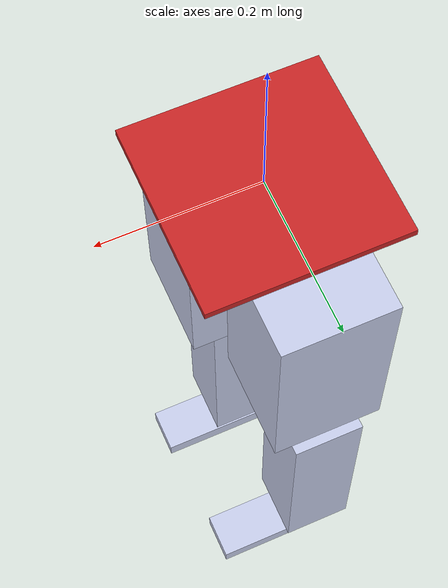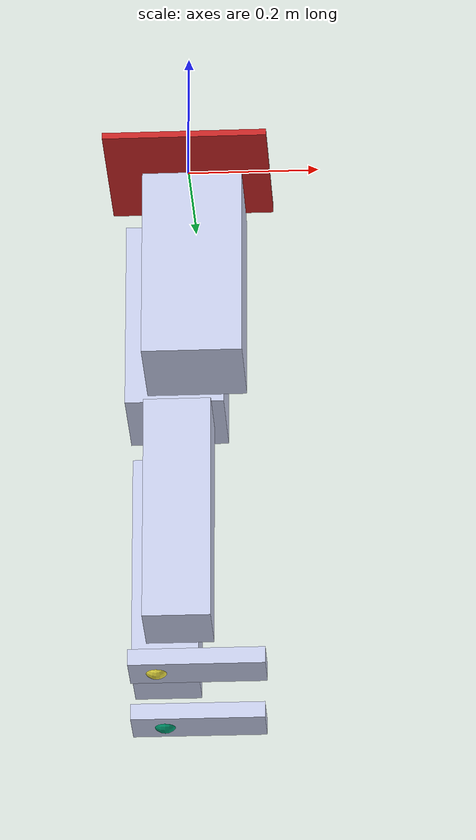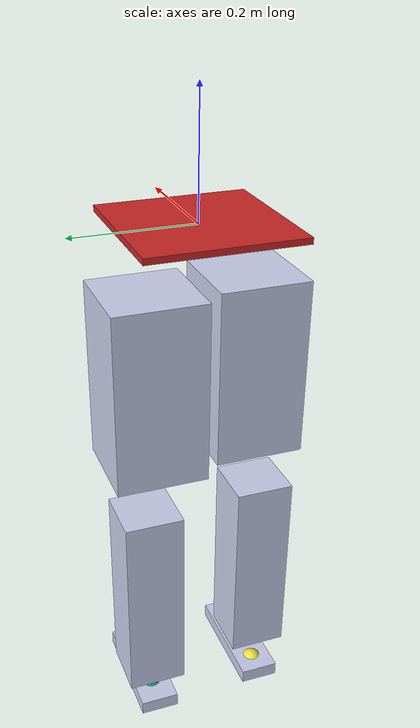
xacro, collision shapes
<?xml version="1.0" encoding="utf-8"?>
<robot name="oslsim" xmlns:xacro="http://www.ros.org/wiki/xacro">
  <xacro:include filename="$(find gazebo_ros_motors)/xacro/dc_motor.xacro"/>
  <gazebo>
    <plugin name="gazebo_ros_control" filename="libgazebo_ros_control.so">
      <robotNamespace>/oslsim</robotNamespace>
    </plugin>
  </gazebo>

  <xacro:dc_motor motor_name="osl_ankle" robot_ns="/oslsim" parent_link="osl_shank" child_link="osl_foot">
    <xacro:property name="params_yaml" value="$(find oslsim)/config/osl_ankle.yaml"/>
    <origin
      xyz="-0.00077967 -0.3134 0.026811"
      rpy="0 0 0" />
  </xacro:dc_motor>

  <xacro:dc_motor motor_name="osl_knee" robot_ns="/oslsim" parent_link="socket" child_link="osl_shank">
    <xacro:property name="params_yaml" value="$(find oslsim)/config/osl_knee.yaml"/>
    <origin
      xyz="-0.0073766 -0.062441 -0.4427"
      rpy="1.5708 0 0" />
  </xacro:dc_motor>

  <gazebo>
      <plugin name="p3d_base_controller" filename="libgazebo_ros_p3d.so">
        <robotNamespace>/oslsim</robotNamespace>
        <alwaysOn>true</alwaysOn>
        <updateRate>50.0</updateRate>
        <bodyName>body</bodyName>
        <topicName>odom</topicName>
        <gaussianNoise>0.01</gaussianNoise>
        <frameName>world</frameName>
        <xyzOffsets>0 0 0</xyzOffsets>
        <rpyOffsets>0 0 0</rpyOffsets>
      </plugin>
  </gazebo>

  <link name="world"/>

  <link name="slider">
    <inertial>
          <origin rpy="0.0 0 0" xyz="0 0 0"/>
          <mass value="0.001" />
          <inertia ixx="1.0e-07" ixy="0.0" ixz="0.0" iyy="1.0e-07" iyz="0.0" izz="1.0e-07"/>
      </inertial>
      <collision>
          <origin rpy="0.0 0 0" xyz="0 0 0"/>
          <geometry>
              <box size="0.25 0.25 0.01"/>
          </geometry>
      </collision>
  </link>

  <gazebo reference="slider">
      <kp>1000.0</kp>
      <kd>1000.0</kd>
      <mu1>0.5</mu1>
      <mu2>0.5</mu2>
      <material>Gazebo/Red</material>
  </gazebo>

  <joint name="slider_joint" type="prismatic">
      <origin xyz="0 0 0" rpy="0.0 0.0 0.0"/>
      <parent link="world" />
      <child link="slider" />
      <axis xyz="1 0 0" />
      <limit effort="1" lower="-10.0" upper="100.0" velocity="1" />
      <dynamics damping="0.05" friction="0.1"/>
  </joint>

  <link name="entity">
      <inertial>
            <origin rpy="0.0 0 0" xyz="0 0 0"/>
            <mass value="0.1" />
            <inertia ixx="4.16666666667e-05" ixy="0.0" ixz="0.0" iyy="4.16666666667e-05" iyz="0.0" izz="4.16666666667e-05"/>
        </inertial>
  </link>

  <gazebo reference="entity">
      <kp>1000.0</kp>
      <kd>1000.0</kd>
      <mu1>0.5</mu1>
      <mu2>0.5</mu2>
      <material>Gazebo/Blue</material>
  </gazebo>

  <joint name="entity_joint" type="fixed">
      <parent link="slider"/>
      <child link="entity"/>
      <origin xyz="0 0 -0.05" rpy="0 0 0"/>
  </joint>

  <joint name="root_joint" type="fixed">
    <parent link="entity"/>
    <child link="body"/>
  </joint>

  <link name="body">
    <inertial>
      <origin
        xyz="0 0 0"
        rpy="0 0 0" />
      <mass
        value="0.1" />
      <inertia
        ixx="0.001"
        ixy="0"
        ixz="0"
        iyy="0.001"
        iyz="0"
        izz="0.001" />
    </inertial>
  </link>

  <gazebo reference="body">
      <kp>1000.0</kp>
      <kd>1000.0</kd>
      <mu1>0.5</mu1>
      <mu2>0.5</mu2>
  </gazebo>

  <link name="thigh">
    <inertial>
      <origin
        xyz="0.0079 0.105 -0.18514"
        rpy="1.5708 0 0" />
      <mass
        value="0.55797" />
      <inertia
        ixx="0.0451"
        ixy="-0.0023863"
        ixz="0.00041503"
        iyy="0.017843"
        iyz="-0.00079008"
        izz="0.046937" />
    </inertial>
    <visual>
      <origin
        xyz="0 0 -0.004"
        rpy="0 0 0" />
      <geometry>
        <mesh
          filename="package://oslsim/meshes/thigh.dae" />
      </geometry>
      <material
        name="">
        <color
          rgba="0.79216 0.81961 0.93333 1" />
      </material>
    </visual>
    <collision>
      <origin
        xyz="0.0079 0.105 -0.18514"
        rpy="1.5708 0 0" />
      <geometry>
        <box size="0.15 0.3 0.15"/>
      </geometry>
    </collision>
  </link>

  <gazebo reference="thigh">
      <kp>1000.0</kp>
      <kd>1000.0</kd>
      <mu1>0.5</mu1>
      <mu2>0.5</mu2>
  </gazebo>

  <link name="socket">
    <inertial>
      <origin
        xyz="0.0149 -0.105 -0.18907"
        rpy="1.5708 0 0" />
      <mass
        value="0.55993" />
      <inertia
        ixx="0.045555"
        ixy="-0.0028683"
        ixz="-0.00027507"
        iyy="0.018107"
        iyz="0.0020012"
        izz="0.04735" />
    </inertial>
    <visual>
      <origin
        xyz="0 0 0"
        rpy="0 0 0" />
      <geometry>
        <mesh
          filename="package://oslsim/meshes/socket.dae" />
      </geometry>
      <material
        name="">
        <color
          rgba="0.79216 0.81961 0.93333 1" />
      </material>
    </visual>
    <collision>
      <origin
        xyz="0.0149 -0.105 -0.18907"
        rpy="1.5708 0 0" />
      <geometry>
        <box size="0.15 0.3 0.15"/>
      </geometry>
    </collision>
  </link>

  <gazebo reference="socket">
      <kp>1000.0</kp>
      <kd>1000.0</kd>
      <mu1>0.5</mu1>
      <mu2>0.5</mu2>
  </gazebo>

  <joint name="hip" type="revolute">
    <parent link="body"/>
    <child link="thigh"/>
    <origin xyz="-0.03 -0.015 0" rpy="0 0 0" />
    <axis xyz="-0.03 1 0" />
    <dynamics damping="0.5" friction="0.5"/>
    <limit effort="1.0" velocity="100" lower="-1.57" upper="1.57" />
  </joint>

  <transmission name="hip_transmission">
    <type>transmission_interface/SimpleTransmission</type>
    <joint name="hip">
      <hardwareInterface>hardware_interface/EffortJointInterface</hardwareInterface>
    </joint>
    <actuator name="hip_motor">
      <hardwareInterface>hardware_interface/EffortJointInterface</hardwareInterface>
      <mechanicalReduction>1</mechanicalReduction>
    </actuator>
  </transmission>

  <joint name="osl_hip" type="revolute">
    <parent link="body"/>
    <child link="socket"/>
    <origin xyz="0 0.015 0" rpy="0 0 0" />
    <axis xyz="0 1 0" />
    <dynamics damping="0.5" friction="0.5"/>
    <limit effort="1.0" velocity="100" lower="-1.57" upper="1.57" />
  </joint>

  <transmission name="osl_hip_transmission">
    <type>transmission_interface/SimpleTransmission</type>
    <joint name="osl_hip">
      <hardwareInterface>hardware_interface/EffortJointInterface</hardwareInterface>
    </joint>
    <actuator name="osl_hip_motor">
      <hardwareInterface>hardware_interface/EffortJointInterface</hardwareInterface>
      <mechanicalReduction>1</mechanicalReduction>
    </actuator>
  </transmission>

  <link name="shin">
    <inertial>
      <origin
        xyz="0.00071104 -0.14671 -0.059447"
        rpy="0 0 0" />
      <mass
        value="0.1" />
      <inertia
        ixx="0.00092445"
        ixy="-1.5017E-05"
        ixz="-2.9597E-06"
        iyy="0.00064852"
        iyz="1.2705E-05"
        izz="0.0013496" />
    </inertial>
    <visual>
      <origin
        xyz="0.006 0.01 0.006"
        rpy="0 0 0" />
      <geometry>
        <mesh
          filename="package://oslsim/meshes/shin.dae" />
      </geometry>
      <material
        name="">
        <color
          rgba="0.79216 0.81961 0.93333 1" />
      </material>
    </visual>
    <collision>
      <origin
        xyz="0.00071104 -0.14671 -0.059447"
        rpy="0 0 0" />
      <geometry>
        <box size="0.1 0.35 0.1"/>
      </geometry>
    </collision>
  </link>

  <gazebo reference="shin">
      <kp>1000.0</kp>
      <kd>1000.0</kd>
      <mu1>0.5</mu1>
      <mu2>0.5</mu2>
  </gazebo>

  <link name="osl_shank">
    <inertial>
      <origin
        xyz="0.00071137 -0.14671 0.059447"
        rpy="0 0 0" />
      <mass
        value="0.1" />
      <inertia
        ixx="0.00092446"
        ixy="-1.5017E-05"
        ixz="2.9586E-06"
        iyy="0.00064852"
        iyz="-1.2701E-05"
        izz="0.0013496" />
    </inertial>
    <visual>
      <origin
        xyz="0 0 0"
        rpy="0 0 0" />
      <geometry>
        <mesh
          filename="package://oslsim/meshes/osl_shank.dae" />
      </geometry>
      <material
        name="">
        <color
          rgba="0.79216 0.81961 0.93333 1" />
      </material>
    </visual>
    <collision>
      <origin
        xyz="0.00071137 -0.14671 0.059447"
        rpy="0 0 0" />
      <geometry>
        <box size="0.1 0.35 0.1"/>
      </geometry>
    </collision>
  </link>

  <gazebo reference="osl_shank">
      <kp>1000.0</kp>
      <kd>1000.0</kd>
      <mu1>0.5</mu1>
      <mu2>0.5</mu2>
      <sensor name="osl_shank_imu" type="imu">
        <always_on>true</always_on>
        <update_rate>50</update_rate>
        <visualize>true</visualize>
        <topic>__default_topic__</topic>
        <plugin filename="libgazebo_ros_imu_sensor.so" name="imu_plugin">
          <robotNamespace>/oslsim</robotNamespace>
          <topicName>imu/osl_shank</topicName>
          <bodyName>osl_shank</bodyName>
          <updateRateHZ>50.0</updateRateHZ>
          <gaussianNoise>0.0</gaussianNoise>
          <xyzOffset>0 0 0</xyzOffset>
          <rpyOffset>0 0 0</rpyOffset>
          <frameName>osl_shank</frameName>
          <initialOrientationAsReference>false</initialOrientationAsReference>
        </plugin>
        <pose>0 0 0 0 0 0</pose>
      </sensor>
  </gazebo>

  <joint name="knee"
    type="revolute">
    <origin
      xyz="-0.0073766 0.057865 -0.4427"
      rpy="1.5708 0 0" />
    <parent
      link="thigh" />
    <child
      link="shin" />
    <axis
      xyz="0 0 1" />
    <dynamics damping="0.5" friction="0.5"/>
    <limit effort="1.0" velocity="100" lower="-1.57" upper="1.57" />
  </joint>

  <transmission name="knee_transmission">
    <type>transmission_interface/SimpleTransmission</type>
    <joint name="knee">
      <hardwareInterface>hardware_interface/EffortJointInterface</hardwareInterface>
    </joint>
    <actuator name="knee_motor">
      <hardwareInterface>hardware_interface/EffortJointInterface</hardwareInterface>
      <mechanicalReduction>1</mechanicalReduction>
    </actuator>
  </transmission>

  <link name="foot">
    <inertial>
      <origin
        xyz="0.029606 -0.056108 0.013102"
        rpy="-0.175 0 0" />
      <mass
        value="0.01" />
      <inertia
        ixx="0.00051563"
        ixy="2.5317E-06"
        ixz="-1.6036E-06"
        iyy="0.00049449"
        iyz="0.0001344"
        izz="0.0001125" />
    </inertial>
    <visual>
      <origin
        xyz="-0.0035 0.02 0.024"
        rpy="0 0 0" />
      <geometry>
        <mesh
          filename="package://oslsim/meshes/foot.dae" />
      </geometry>
      <material
        name="">
        <color
          rgba="0.79216 0.81961 0.93333 1" />
      </material>
    </visual>
    <collision>
      <origin
        xyz="0.029606 -0.065 0.05"
        rpy="0 0 0" />
      <geometry>
        <box size="0.0675 0.025 0.2"/>
      </geometry>
      <surface>
        <friction>
          <ode>
            <mu>1.0</mu>
            <mu2>1.0</mu2>
            <fdir1>1 0 0</fdir1>
            <slip1>0</slip1>
            <slip2>0</slip2>
          </ode>
          <torsional>
            <coefficient>0.0</coefficient>
            <patch_radius>0</patch_radius>
            <surface_radius>0</surface_radius>
            <use_patch_radius>1</use_patch_radius>
            <ode>
              <slip>0</slip>
            </ode>
          </torsional>
        </friction>
      </surface>
    </collision>
  </link>

  <gazebo reference="foot">
      <kp>1000.0</kp>
      <kd>1000.0</kd>
      <mu1>1.0</mu1>
      <mu2>1.0</mu2>
  </gazebo>

  <link name="osl_foot">
    <inertial>
      <origin
        xyz="0.029606 -0.056108 0.033102"
        rpy="0.175 -1.5708 0" />
      <mass
        value="0.01" />
      <inertia
        ixx="0.00051564"
        ixy="-2.531E-06"
        ixz="-1.6019E-06"
        iyy="0.0004945"
        iyz="-0.0001344"
        izz="0.0001125" />
    </inertial>
    <visual>
      <origin
        xyz="0 0 0"
        rpy="0.175 -1.5708 -3.1416" />
      <geometry>
        <mesh
          filename="package://oslsim/meshes/osl_foot.dae" />
      </geometry>
      <material
        name="">
        <color
          rgba="0.79216 0.81961 0.93333 1" />
      </material>
    </visual>
    <collision>
      <origin
        xyz="0.03 -0.065 0.03"
        rpy="0 -1.5708 0" />
      <geometry>
        <box size="0.0675 0.025 0.2"/>
      </geometry>
      <surface>
        <friction>
          <ode>
            <mu>1.0</mu>
            <mu2>1.0</mu2>
            <fdir1>1 0 0</fdir1>
            <slip1>0</slip1>
            <slip2>0</slip2>
          </ode>
          <torsional>
            <coefficient>0.0</coefficient>
            <patch_radius>0</patch_radius>
            <surface_radius>0</surface_radius>
            <use_patch_radius>1</use_patch_radius>
            <ode>
              <slip>0</slip>
            </ode>
          </torsional>
        </friction>
      </surface>
    </collision>
  </link>

  <gazebo reference="osl_foot">
      <kp>1000.0</kp>
      <kd>1000.0</kd>
      <mu1>1.0</mu1>
      <mu2>1.0</mu2>
      <sensor name="osl_foot_imu" type="imu">
        <always_on>true</always_on>
        <update_rate>50</update_rate>
        <visualize>true</visualize>
        <topic>__default_topic__</topic>
        <plugin filename="libgazebo_ros_imu_sensor.so" name="imu_plugin">
          <robotNamespace>/oslsim</robotNamespace>
          <topicName>imu/foot</topicName>
          <bodyName>osl_foot</bodyName>
          <updateRateHZ>50.0</updateRateHZ>
          <gaussianNoise>0.0</gaussianNoise>
          <xyzOffset>0 0 0</xyzOffset>
          <rpyOffset>0 0 0</rpyOffset>
          <frameName>osl_foot</frameName>
          <initialOrientationAsReference>false</initialOrientationAsReference>
        </plugin>
        <pose>0 0 0 0 0 0</pose>
      </sensor>
  </gazebo>

  <joint name="ankle"
    type="revolute">
    <origin
      xyz="-0.00077967 -0.3134 -0.026811"
      rpy="0 1.5708 0" />
    <parent
      link="shin" />
    <child
      link="foot" />
    <axis
      xyz="1 0 0" />
    <dynamics damping="0.5" friction="0.5"/>
    <limit effort="1.0" velocity="100" lower="-1.57" upper="1.57" />
  </joint>

  <transmission name="ankle_transmission">
    <type>transmission_interface/SimpleTransmission</type>
    <joint name="ankle">
      <hardwareInterface>hardware_interface/EffortJointInterface</hardwareInterface>
    </joint>
    <actuator name="ankle_motor">
      <hardwareInterface>hardware_interface/EffortJointInterface</hardwareInterface>
      <mechanicalReduction>1</mechanicalReduction>
    </actuator>
  </transmission>

  <link name="foot_heel">
    <inertial>
          <origin xyz="0 0 0" rpy="0 0 0"/>
          <mass value="0.00001" />
          <inertia ixx="1.6e-08" ixy="0.0" ixz="0.0" iyy="1.6e-08" iyz="0.0" izz="1.6e-08"/>
      </inertial>
      <collision>
          <origin xyz="0 0 0" rpy="0 0 0"/>
          <geometry>
              <sphere radius="0.020"/>
          </geometry>
      </collision>
  </link>

  <gazebo reference="foot_heel">
      <kp>1000.0</kp>
      <kd>1000.0</kd>
      <mu1>0.5</mu1>
      <mu2>0.5</mu2>
  </gazebo>

  <link name="osl_foot_loadcell_link">
    <inertial>
          <origin xyz="0 0 0" rpy="0 0 0"/>
          <mass value="0.00001" />
          <inertia ixx="1.6e-08" ixy="0.0" ixz="0.0" iyy="1.6e-08" iyz="0.0" izz="1.6e-08"/>
      </inertial>
      <collision>
          <origin xyz="0 0 0" rpy="0 0 0"/>
          <geometry>
              <sphere radius="0.020"/>
          </geometry>
      </collision>
  </link>

  <gazebo reference="osl_foot_loadcell_link">
      <kp>1000.0</kp>
      <kd>1000.0</kd>
      <mu1>0.5</mu1>
      <mu2>0.5</mu2>
  </gazebo>

  <joint name="foot_heel_joint" type="fixed">
      <parent link="foot"/>
      <child link="foot_heel"/>
      <origin xyz="0.03 -0.065 0" rpy="0 0 0"/>
  </joint>

  <joint name="osl_foot_loadcell_link_joint" type="fixed">
      <parent link="osl_foot"/>
      <child link="osl_foot_loadcell_link"/>
      <origin xyz="-0.03 -0.065 0.03" rpy="0 0 0"/>
  </joint>

  <gazebo reference="osl_foot_loadcell_link">
      <sensor name="osl_foot_loadcell_sensor" type="contact">
        <always_on>true</always_on>
        <update_rate>50</update_rate>
        <contact>
          <collision>osl_foot_loadcell_link_collision_1</collision>
        </contact>
        <plugin name="osl_foot_bumper_plugin" filename="libgazebo_ros_bumper.so">
          <robotNamespace>/oslsim</robotNamespace>
          <bumperTopicName>loadcell</bumperTopicName>
          <frameName>osl_foot_loadcell_link</frameName>
        </plugin>
      </sensor>
  </gazebo>

</robot>

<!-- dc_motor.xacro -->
<robot xmlns:xacro="http://www.ros.org/wiki/xacro">

<xacro:macro name="dc_motor" params="motor_name parent_link child_link *origin *axis">
  <xacro:property name="motor_param" value="${xacro.load_yaml(params_yaml)}"/>
  <joint name="${motor_name}" type="continuous">
      <parent link="${parent_link}"/>
      <child link="${child_link}"/>
      <xacro:insert_block name="origin"/>
      <xacro:insert_block name="axis"/>
      <dynamics damping="${motor_param['joint_damping']}" friction="${motor_param['joint_friction']}"/>
  </joint>
  <gazebo reference="${motor_name}">
    <provideFeedback>true</provideFeedback>
  </gazebo>
  <gazebo>
    <plugin name="${motor_name}_plugin" filename="libgazebo_ros_dc_motor.so">
      <motor_shaft_joint>${motor_name}</motor_shaft_joint>
      <motor_wrench_frame>${child_link}</motor_wrench_frame>
      <command_topic>${motor_name}/command</command_topic>
      <velocity_topic>${motor_name}/velocity</velocity_topic>
      <encoder_topic>${motor_name}/encoder</encoder_topic>
      <current_topic>${motor_name}/current</current_topic>
      <supply_topic>${motor_name}/supply_voltage</supply_topic>
      <publish_encoder>${motor_param['publish_encoder']}</publish_encoder>
      <publish_velocity>${motor_param['publish_velocity']}</publish_velocity>
      <publish_current>${motor_param['publish_current']}</publish_current>
	      <!-- Nuevo, editado -->
	      <!-- Nuevo, editado -->
      <publish_motor_joint_state>${motor_param['publish_motor_joint_state']}</publish_motor_joint_state>
      <update_rate>${motor_param['update_rate']}</update_rate>
      <motor_nominal_voltage>${motor_param['motor_nominal_voltage']}</motor_nominal_voltage>
      <moment_of_inertia>${motor_param['moment_of_inertia']}</moment_of_inertia>
      <armature_damping_ratio>${motor_param['armature_damping_ratio']}</armature_damping_ratio>
      <electromotive_force_constant>${motor_param['electromotive_force_constant']}</electromotive_force_constant>
      <electric_resistance>${motor_param['electric_resistance']}</electric_resistance>
      <electric_inductance>${motor_param['electric_inductance']}</electric_inductance>
      <gear_ratio>${motor_param['gear_ratio']}</gear_ratio>
      <encoder_ppr>${motor_param['encoder_ppr']}</encoder_ppr>
      <velocity_noise>${motor_param['velocity_noise']}</velocity_noise>
      <rosDebugLevel>Debug</rosDebugLevel>
    </plugin>
  </gazebo>

</xacro:macro>

</robot>
